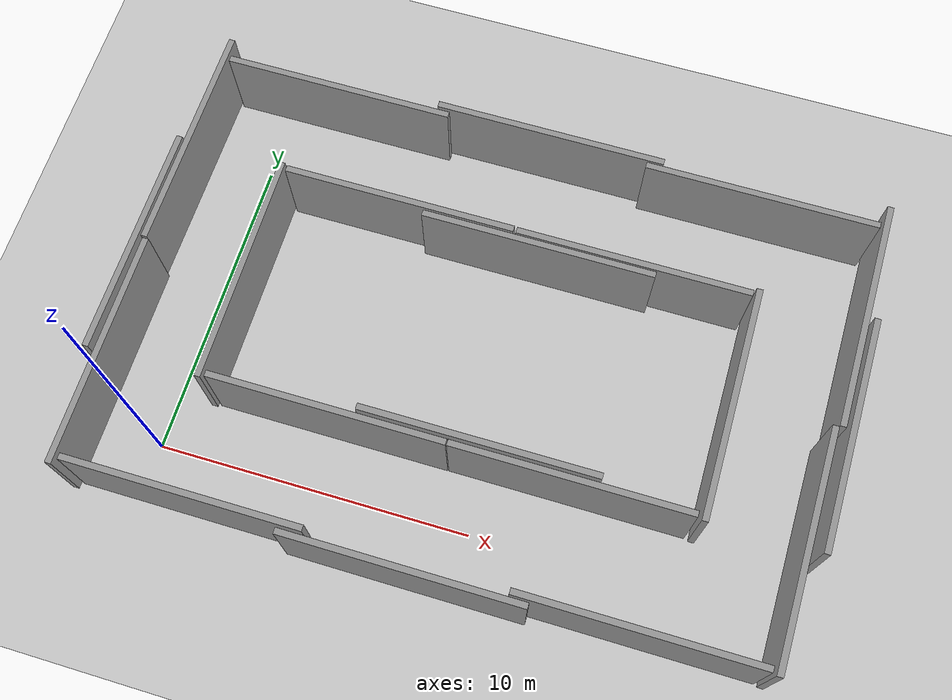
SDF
<sdf version="1.6">
 <world name="default">
  <light name="sun" type="directional">
   <pose>0 0 10 0 -0 0</pose>
   <diffuse>0.8 0.8 0.8 1</diffuse>
   <specular>0.1 0.1 0.1 1</specular>
   <attenuation>
    <range>1000</range>
    <constant>0.9</constant>
    <linear>0.01</linear>
    <quadratic>0.001</quadratic>
   </attenuation>
   <direction>-0.5 0.5 -1</direction>
  </light>
  <model name="ground_plane">
   <static>1</static>
   <link name="link">
    <collision name="collision">
     <geometry><plane><normal>0 0 1</normal><size>100 100</size></plane></geometry>
     <surface><friction><ode><mu>100</mu><mu2>50</mu2></ode></friction></surface>
    </collision>
    <visual name="visual">
     <cast_shadows>0</cast_shadows>
     <geometry><plane><normal>0 0 1</normal><size>100 100</size></plane></geometry>
     <material>
      <script><uri>file://media/materials/scripts/gazebo.material</uri><name>Gazebo/Grey</name></script>
     </material>
    </visual>
   </link>
  </model>
  <gravity>0 0 -9.8</gravity>
  <magnetic_field>6e-06 2.3e-05 -4.2e-05</magnetic_field>
  <atmosphere type="adiabatic"/>
  <physics name="default_physics" default="0" type="ode">
   <max_step_size>0.001</max_step_size>
   <real_time_factor>1</real_time_factor>
   <real_time_update_rate>1000</real_time_update_rate>
  </physics>
  <scene><ambient>0.4 0.4 0.4 1</ambient><background>0.7 0.7 0.7 1</background><shadows>1</shadows></scene>
  <spherical_coordinates>
   <surface_model>EARTH_WGS84</surface_model>
   <latitude_deg>0</latitude_deg>
   <longitude_deg>0</longitude_deg>
   <elevation>0</elevation>
   <heading_deg>0</heading_deg>
  </spherical_coordinates>
  <model name="grey_wall">
   <static>1</static>
   <link name="link">
    <pose>0 0 1.4 0 -0 0</pose>
    <collision name="collision"><geometry><box><size>7.5 0.2 2.8</size></box></geometry></collision>
    <visual name="visual">
     <cast_shadows>0</cast_shadows>
     <geometry><box><size>7.5 0.2 2.8</size></box></geometry>
     <material>
      <script>
       <uri>model://grey_wall/materials/scripts</uri>
       <uri>model://grey_wall/materials/textures</uri>
       <name>vrc/grey_wall</name>
      </script>
     </material>
    </visual>
   </link>
   <pose>1.89817 -1.70554 0 0 -0 0</pose>
  </model>
  <model name="grey_wall_0">
   <static>1</static>
   <link name="link">
    <pose>0 0 1.4 0 -0 0</pose>
    <collision name="collision"><geometry><box><size>7.5 0.2 2.8</size></box></geometry></collision>
    <visual name="visual">
     <cast_shadows>0</cast_shadows>
     <geometry><box><size>7.5 0.2 2.8</size></box></geometry>
     <material>
      <script>
       <uri>model://grey_wall/materials/scripts</uri>
       <uri>model://grey_wall/materials/textures</uri>
       <name>vrc/grey_wall</name>
      </script>
     </material>
    </visual>
   </link>
   <pose>5.05377 1.88597 0 0 -0 0</pose>
  </model>
  <model name="grey_wall_1">
   <static>1</static>
   <link name="link">
    <pose>0 0 1.4 0 -0 0</pose>
    <collision name="collision"><geometry><box><size>7.5 0.2 2.8</size></box></geometry></collision>
    <visual name="visual">
     <cast_shadows>0</cast_shadows>
     <geometry><box><size>7.5 0.2 2.8</size></box></geometry>
     <material>
      <script>
       <uri>model://grey_wall/materials/scripts</uri>
       <uri>model://grey_wall/materials/textures</uri>
       <name>vrc/grey_wall</name>
      </script>
     </material>
    </visual>
   </link>
   <pose>8.63878 -1.99334 0 0 -0 0</pose>
  </model>
  <model name="grey_wall_2">
   <static>1</static>
   <link name="link">
    <pose>0 0 1.4 0 -0 0</pose>
    <collision name="collision"><geometry><box><size>7.5 0.2 2.8</size></box></geometry></collision>
    <visual name="visual">
     <cast_shadows>0</cast_shadows>
     <geometry><box><size>7.5 0.2 2.8</size></box></geometry>
     <material>
      <script>
       <uri>model://grey_wall/materials/scripts</uri>
       <uri>model://grey_wall/materials/textures</uri>
       <name>vrc/grey_wall</name>
      </script>
     </material>
    </visual>
   </link>
   <pose>15.5294 -1.7314 0 0 -0 0</pose>
  </model>
  <model name="grey_wall_3">
   <static>1</static>
   <link name="link">
    <pose>0 0 1.4 0 -0 0</pose>
    <collision name="collision"><geometry><box><size>7.5 0.2 2.8</size></box></geometry></collision>
    <visual name="visual">
     <cast_shadows>0</cast_shadows>
     <geometry><box><size>7.5 0.2 2.8</size></box></geometry>
     <material>
      <script>
       <uri>model://grey_wall/materials/scripts</uri>
       <uri>model://grey_wall/materials/textures</uri>
       <name>vrc/grey_wall</name>
      </script>
     </material>
    </visual>
   </link>
   <pose>12.5844 1.89126 0 0 -0 0</pose>
  </model>
  <model name="grey_wall_4">
   <static>1</static>
   <link name="link">
    <pose>0 0 1.4 0 -0 0</pose>
    <collision name="collision"><geometry><box><size>7.5 0.2 2.8</size></box></geometry></collision>
    <visual name="visual">
     <cast_shadows>0</cast_shadows>
     <geometry><box><size>7.5 0.2 2.8</size></box></geometry>
     <material>
      <script>
       <uri>model://grey_wall/materials/scripts</uri>
       <uri>model://grey_wall/materials/textures</uri>
       <name>vrc/grey_wall</name>
      </script>
     </material>
    </visual>
   </link>
   <pose>9.69149 2.19004 0 0 -0 0</pose>
  </model>
  <model name="grey_wall_5">
   <static>1</static>
   <link name="link">
    <pose>0 0 1.4 0 -0 0</pose>
    <collision name="collision"><geometry><box><size>7.5 0.2 2.8</size></box></geometry></collision>
    <visual name="visual">
     <cast_shadows>0</cast_shadows>
     <geometry><box><size>7.5 0.2 2.8</size></box></geometry>
     <material>
      <script>
       <uri>model://grey_wall/materials/scripts</uri>
       <uri>model://grey_wall/materials/textures</uri>
       <name>vrc/grey_wall</name>
      </script>
     </material>
    </visual>
   </link>
   <pose>9.64015 8.79515 0 0 -0 0</pose>
  </model>
  <model name="grey_wall_6">
   <static>1</static>
   <link name="link">
    <pose>0 0 1.4 0 -0 0</pose>
    <collision name="collision"><geometry><box><size>7.5 0.2 2.8</size></box></geometry></collision>
    <visual name="visual">
     <cast_shadows>0</cast_shadows>
     <geometry><box><size>7.5 0.2 2.8</size></box></geometry>
     <material>
      <script>
       <uri>model://grey_wall/materials/scripts</uri>
       <uri>model://grey_wall/materials/textures</uri>
       <name>vrc/grey_wall</name>
      </script>
     </material>
    </visual>
   </link>
   <pose>5.03811 9.06317 0 0 -0 0</pose>
  </model>
  <model name="grey_wall_7">
   <static>1</static>
   <link name="link">
    <pose>0 0 1.4 0 -0 0</pose>
    <collision name="collision"><geometry><box><size>7.5 0.2 2.8</size></box></geometry></collision>
    <visual name="visual">
     <cast_shadows>0</cast_shadows>
     <geometry><box><size>7.5 0.2 2.8</size></box></geometry>
     <material>
      <script>
       <uri>model://grey_wall/materials/scripts</uri>
       <uri>model://grey_wall/materials/textures</uri>
       <name>vrc/grey_wall</name>
      </script>
     </material>
    </visual>
   </link>
   <pose>12.6316 9.04779 0 0 -0 0</pose>
  </model>
  <model name="grey_wall_8">
   <static>1</static>
   <link name="link">
    <pose>0 0 1.4 0 -0 0</pose>
    <collision name="collision"><geometry><box><size>7.5 0.2 2.8</size></box></geometry></collision>
    <visual name="visual">
     <cast_shadows>0</cast_shadows>
     <geometry><box><size>7.5 0.2 2.8</size></box></geometry>
     <material>
      <script>
       <uri>model://grey_wall/materials/scripts</uri>
       <uri>model://grey_wall/materials/textures</uri>
       <name>vrc/grey_wall</name>
      </script>
     </material>
    </visual>
   </link>
   <pose>1.10123 5.47266 0 0 -0 1.57137</pose>
  </model>
  <model name="grey_wall_9">
   <static>1</static>
   <link name="link">
    <pose>0 0 1.4 0 -0 0</pose>
    <collision name="collision"><geometry><box><size>7.5 0.2 2.8</size></box></geometry></collision>
    <visual name="visual">
     <cast_shadows>0</cast_shadows>
     <geometry><box><size>7.5 0.2 2.8</size></box></geometry>
     <material>
      <script>
       <uri>model://grey_wall/materials/scripts</uri>
       <uri>model://grey_wall/materials/textures</uri>
       <name>vrc/grey_wall</name>
      </script>
     </material>
    </visual>
   </link>
   <pose>16.5548 5.48828 0 0 0 -1.56987</pose>
  </model>
  <model name="grey_wall_10">
   <static>1</static>
   <link name="link">
    <pose>0 0 1.4 0 -0 0</pose>
    <collision name="collision"><geometry><box><size>7.5 0.2 2.8</size></box></geometry></collision>
    <visual name="visual">
     <cast_shadows>0</cast_shadows>
     <geometry><box><size>7.5 0.2 2.8</size></box></geometry>
     <material>
      <script>
       <uri>model://grey_wall/materials/scripts</uri>
       <uri>model://grey_wall/materials/textures</uri>
       <name>vrc/grey_wall</name>
      </script>
     </material>
    </visual>
   </link>
   <pose>1.89455 12.3796 0 0 -0 0</pose>
  </model>
  <model name="grey_wall_11">
   <static>1</static>
   <link name="link">
    <pose>0 0 1.4 0 -0 0</pose>
    <collision name="collision"><geometry><box><size>7.5 0.2 2.8</size></box></geometry></collision>
    <visual name="visual">
     <cast_shadows>0</cast_shadows>
     <geometry><box><size>7.5 0.2 2.8</size></box></geometry>
     <material>
      <script>
       <uri>model://grey_wall/materials/scripts</uri>
       <uri>model://grey_wall/materials/textures</uri>
       <name>vrc/grey_wall</name>
      </script>
     </material>
    </visual>
   </link>
   <pose>8.96315 12.6764 0 0 -0 0</pose>
  </model>
  <model name="grey_wall_12">
   <static>1</static>
   <link name="link">
    <pose>0 0 1.4 0 -0 0</pose>
    <collision name="collision"><geometry><box><size>7.5 0.2 2.8</size></box></geometry></collision>
    <visual name="visual">
     <cast_shadows>0</cast_shadows>
     <geometry><box><size>7.5 0.2 2.8</size></box></geometry>
     <material>
      <script>
       <uri>model://grey_wall/materials/scripts</uri>
       <uri>model://grey_wall/materials/textures</uri>
       <name>vrc/grey_wall</name>
      </script>
     </material>
    </visual>
   </link>
   <pose>15.9386 12.4182 0 0 -0 0</pose>
  </model>
  <model name="grey_wall_13">
   <static>1</static>
   <link name="link">
    <pose>0 0 1.4 0 -0 0</pose>
    <collision name="collision"><geometry><box><size>7.5 0.2 2.8</size></box></geometry></collision>
    <visual name="visual">
     <cast_shadows>0</cast_shadows>
     <geometry><box><size>7.5 0.2 2.8</size></box></geometry>
     <material>
      <script>
       <uri>model://grey_wall/materials/scripts</uri>
       <uri>model://grey_wall/materials/textures</uri>
       <name>vrc/grey_wall</name>
      </script>
     </material>
    </visual>
   </link>
   <pose>-2.06074 1.75576 0 0 -0 1.56873</pose>
  </model>
  <model name="grey_wall_14">
   <static>1</static>
   <link name="link">
    <pose>0 0 1.4 0 -0 0</pose>
    <collision name="collision"><geometry><box><size>7.5 0.2 2.8</size></box></geometry></collision>
    <visual name="visual">
     <cast_shadows>0</cast_shadows>
     <geometry><box><size>7.5 0.2 2.8</size></box></geometry>
     <material>
      <script>
       <uri>model://grey_wall/materials/scripts</uri>
       <uri>model://grey_wall/materials/textures</uri>
       <name>vrc/grey_wall</name>
      </script>
     </material>
    </visual>
   </link>
   <pose>-2.41208 5.42818 0 0 -0 1.55842</pose>
  </model>
  <model name="grey_wall_15">
   <static>1</static>
   <link name="link">
    <pose>0 0 1.4 0 -0 0</pose>
    <collision name="collision"><geometry><box><size>7.5 0.2 2.8</size></box></geometry></collision>
    <visual name="visual">
     <cast_shadows>0</cast_shadows>
     <geometry><box><size>7.5 0.2 2.8</size></box></geometry>
     <material>
      <script>
       <uri>model://grey_wall/materials/scripts</uri>
       <uri>model://grey_wall/materials/textures</uri>
       <name>vrc/grey_wall</name>
      </script>
     </material>
    </visual>
   </link>
   <pose>-2.08954 9.3158 0 0 0 -1.58379</pose>
  </model>
  <model name="grey_wall_16">
   <static>1</static>
   <link name="link">
    <pose>0 0 1.4 0 -0 0</pose>
    <collision name="collision"><geometry><box><size>7.5 0.2 2.8</size></box></geometry></collision>
    <visual name="visual">
     <cast_shadows>0</cast_shadows>
     <geometry><box><size>7.5 0.2 2.8</size></box></geometry>
     <material>
      <script>
       <uri>model://grey_wall/materials/scripts</uri>
       <uri>model://grey_wall/materials/textures</uri>
       <name>vrc/grey_wall</name>
      </script>
     </material>
    </visual>
   </link>
   <pose>19.5403 1.85897 0 0 0 -1.58524</pose>
  </model>
  <model name="grey_wall_17">
   <static>1</static>
   <link name="link">
    <pose>0 0 1.4 0 -0 0</pose>
    <collision name="collision"><geometry><box><size>7.5 0.2 2.8</size></box></geometry></collision>
    <visual name="visual">
     <cast_shadows>0</cast_shadows>
     <geometry><box><size>7.5 0.2 2.8</size></box></geometry>
     <material>
      <script>
       <uri>model://grey_wall/materials/scripts</uri>
       <uri>model://grey_wall/materials/textures</uri>
       <name>vrc/grey_wall</name>
      </script>
     </material>
    </visual>
   </link>
   <pose>20.1229 5.54659 0 0 -0 1.55805</pose>
  </model>
  <model name="grey_wall_18">
   <static>1</static>
   <link name="link">
    <pose>0 0 1.4 0 -0 0</pose>
    <collision name="collision"><geometry><box><size>7.5 0.2 2.8</size></box></geometry></collision>
    <visual name="visual">
     <cast_shadows>0</cast_shadows>
     <geometry><box><size>7.5 0.2 2.8</size></box></geometry>
     <material>
      <script>
       <uri>model://grey_wall/materials/scripts</uri>
       <uri>model://grey_wall/materials/textures</uri>
       <name>vrc/grey_wall</name>
      </script>
     </material>
    </visual>
   </link>
   <pose>19.8446 9.38605 0 0 0 -1.58251</pose>
  </model>
 </world>
</sdf>
